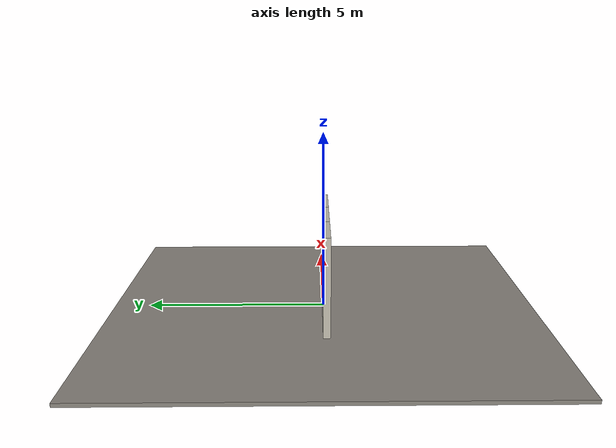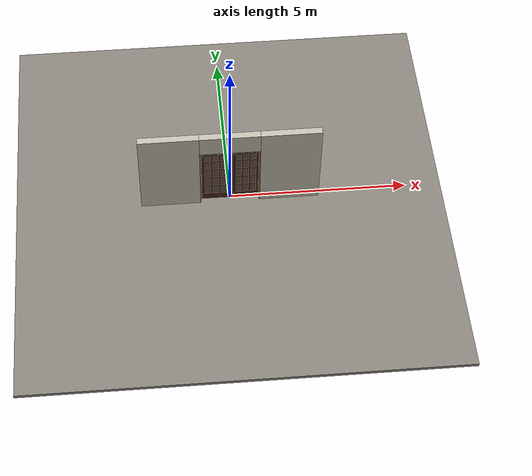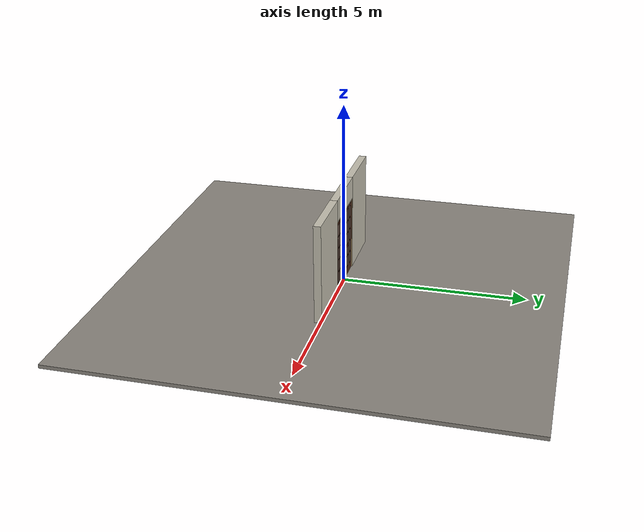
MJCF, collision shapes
<?xml version="1.0" ?>
<mujoco model="db0604_swing_double_full">
  <compiler angle="radian" meshdir="../../hardware" texturedir="../../textures" autolimits="true" inertiafromgeom="false"/>
  <option timestep="0.002" integrator="implicitfast" cone="elliptic" impratio="10" noslip_iterations="3">
    <flag multiccd="enable"/>
  </option>
  <size memory="16M"/>
  <default>
    <geom condim="4" solref="0.005 1" solimp="0.95 0.99 0.001"/>
    <joint solreflimit="0.005 1" solimplimit="0.95 0.99 0.001"/>
    <tendon solreflimit="0.005 1"/>
    <equality solref="0.002 1"/>
  </default>
  <visual>
    <headlight ambient="0.4 0.4 0.4" diffuse="0.7 0.7 0.7" specular="0.2 0.2 0.2"/>
    <quality shadowsize="4096"/>
    <map znear="0.01" zfar="60"/>
  </visual>
  <asset>
    <mesh name="hinge_e22b26c0c1" file="hinge_e22b26c0c1.obj"/>
    <mesh name="hinge_jamb_e1d088f8dc" file="hinge_jamb_e1d088f8dc.obj"/>
    <mesh name="lever_9f02b544cf" file="lever_9f02b544cf.obj"/>
    <material name="mat_floor" rgba="0.55 0.53 0.5 1" specular="0.2" shininess="0.15" reflectance="0"/>
    <material name="mat_wall" rgba="0.78 0.76 0.7 1" specular="0.2" shininess="0.1" reflectance="0"/>
    <material name="mat_leaf_a" rgba="0.291 0.147 0.087 1" specular="0.2" shininess="0.55" reflectance="0"/>
    <material name="mat_glass" rgba="0.85 0.92 0.95 0.25" specular="0.2" shininess="0.95" reflectance="0.1"/>
    <material name="mat_hinge" rgba="0.65 0.66 0.68 1" specular="0.74" shininess="0.5" reflectance="0.36"/>
    <material name="mat_op_nickel_satin" rgba="0.72 0.7 0.66 1" specular="0.8" shininess="0.65" reflectance="0.4"/>
    <material name="mat_trim" rgba="0.85 0.66 0.3 1" specular="0.8" shininess="0.75" reflectance="0.4"/>
    <material name="mat_bolt" rgba="0.85 0.66 0.3 1" specular="0.8" shininess="0.75" reflectance="0.4"/>
    <material name="mat_leaf_b" rgba="0.291 0.147 0.087 1" specular="0.2" shininess="0.55" reflectance="0"/>
    <material name="mat_frame" rgba="0.82 0.7 0.5 1" specular="0.2" shininess="0.45" reflectance="0"/>
    <material name="mat_astragal" rgba="0.8 0.81 0.83 1" specular="0.8" shininess="0.6" reflectance="0.4"/>
    <texture name="skybox" type="skybox" builtin="gradient" rgb1="0.6 0.7 0.85" rgb2="0.9 0.92 0.95" width="256" height="256"/>
  </asset>
  <worldbody>
    <light name="sun" pos="1.5 -2.5 4" dir="-0.3 0.5 -0.8" directional="true" diffuse="0.8 0.8 0.8" specular="0.3 0.3 0.3" castshadow="true"/>
    <light name="fill" pos="-1.5 2.5 3" dir="0.3 -0.5 -0.7" directional="true" diffuse="0.35 0.35 0.4" castshadow="false"/>
    <camera name="robot_view" pos="0 -2.600187 1.734312" xyaxes="1 0 0 0 0.26963 0.962964" fovy="52"/>
    <camera name="far_view" pos="0 2.484187 1.734312" xyaxes="-1 0 0 0 -0.26963 0.962964" fovy="52"/>
    <camera name="iso" pos="-1.932062 -2.193437 2.141063" xyaxes="0.741536 -0.670913 0 0.242917 0.268487 0.932151" fovy="46"/>
    <camera name="detail_handle" pos="0.0085 -0.877 1.245" xyaxes="0.97561 0.219512 0 -0.070934 0.315262 0.94635" fovy="38"/>
    <geom name="floor" type="box" size="6 6 0.05" pos="0 0 -0.05" material="mat_floor" group="0" contype="1" conaffinity="1" friction="0.8 0.005 0.0001" density="2400"/>
    <geom name="wall_left" type="box" size="0.83175 0.1 1.35" pos="-1.66825 -0.058 1.35" material="mat_wall" group="0" contype="1" conaffinity="1" friction="0.6 0.005 0.0001" density="800"/>
    <geom name="wall_right" type="box" size="0.83175 0.1 1.35" pos="1.66825 -0.058 1.35" material="mat_wall" group="0" contype="1" conaffinity="1" friction="0.6 0.005 0.0001" density="800"/>
    <geom name="wall_header" type="box" size="0.8365 0.1 0.303" pos="0 -0.058 2.397" material="mat_wall" group="0" contype="1" conaffinity="1" friction="0.6 0.005 0.0001" density="800"/>
    <geom name="hinge_0_jamb" type="mesh" mesh="hinge_jamb_e1d088f8dc" pos="-0.8145 0.029 0.259" quat="0 1 0 0" material="mat_hinge" group="1" contype="0" conaffinity="0" density="7850"/>
    <geom name="hinge_1_jamb" type="mesh" mesh="hinge_jamb_e1d088f8dc" pos="-0.8145 0.029 1.025" quat="0 1 0 0" material="mat_hinge" group="1" contype="0" conaffinity="0" density="7850"/>
    <geom name="hinge_2_jamb" type="mesh" mesh="hinge_jamb_e1d088f8dc" pos="-0.8145 0.029 1.861" quat="0 1 0 0" material="mat_hinge" group="1" contype="0" conaffinity="0" density="7850"/>
    <geom name="hinge_0_jamb_2" type="mesh" mesh="hinge_jamb_e1d088f8dc" pos="0.8145 0.029 0.259" quat="0 0 0 1" material="mat_hinge" group="1" contype="0" conaffinity="0" density="7850"/>
    <geom name="hinge_1_jamb_2" type="mesh" mesh="hinge_jamb_e1d088f8dc" pos="0.8145 0.029 1.025" quat="0 0 0 1" material="mat_hinge" group="1" contype="0" conaffinity="0" density="7850"/>
    <geom name="hinge_2_jamb_2" type="mesh" mesh="hinge_jamb_e1d088f8dc" pos="0.8145 0.029 1.861" quat="0 0 0 1" material="mat_hinge" group="1" contype="0" conaffinity="0" density="7850"/>
    <geom name="jamb_l" type="box" size="0.0095 0.1 1.0225" pos="-0.827 -0.058 1.0225" material="mat_frame" group="0" contype="1" conaffinity="1" friction="0.6 0.005 0.0001" density="300"/>
    <geom name="jamb_r" type="box" size="0.0095 0.1 1.0225" pos="0.827 -0.058 1.0225" material="mat_frame" group="0" contype="1" conaffinity="1" friction="0.6 0.005 0.0001" density="300"/>
    <geom name="jamb_head" type="box" size="0.8365 0.1 0.0095" pos="0 -0.058 2.0545" material="mat_frame" group="0" contype="1" conaffinity="1" friction="0.6 0.005 0.0001" density="300"/>
    <geom name="head_stud" type="box" size="0.8365 0.1 0.015" pos="0 -0.058 2.079" material="mat_wall" group="0" contype="1" conaffinity="1" friction="0.6 0.005 0.0001" density="500"/>
    <geom name="stop_l" type="box" size="0.015 0.006 1.0225" pos="-0.8025 -0.0285 1.0225" material="mat_frame" group="0" contype="1" conaffinity="1" friction="0.6 0.005 0.0001" density="300"/>
    <geom name="stop_r" type="box" size="0.015 0.006 1.0225" pos="0.8025 -0.0285 1.0225" material="mat_frame" group="0" contype="1" conaffinity="1" friction="0.6 0.005 0.0001" density="300"/>
    <geom name="stop_head" type="box" size="0.8175 0.006 0.015" pos="0 -0.0285 2.03" material="mat_frame" group="0" contype="1" conaffinity="1" friction="0.6 0.005 0.0001" density="300"/>
    <site name="approach_point" pos="0 -1.5 0" quat="1 0 0 0" size="0.05" rgba="0.2 0.9 0.2 0.5" group="4"/>
    <site name="goal_point" pos="0 1.5 0" quat="1 0 0 0" size="0.05" rgba="0.2 0.9 0.2 0.5" group="4"/>
    <site name="door_plane_center" pos="0 0 1.0225" quat="1 0 0 0" size="0.02" rgba="0.2 0.9 0.2 0.5" group="4"/>
    <site name="approach_point_2" pos="0 -1.5 0" quat="1 0 0 0" size="0.05" rgba="0.2 0.9 0.2 0.5" group="4"/>
    <site name="goal_point_2" pos="0 1.5 0" quat="1 0 0 0" size="0.05" rgba="0.2 0.9 0.2 0.5" group="4"/>
    <site name="door_plane_center_2" pos="0 0 1.0225" quat="1 0 0 0" size="0.02" rgba="0.2 0.9 0.2 0.5" group="4"/>
    <site name="approach_point_3" pos="0 -1.5 0" quat="1 0 0 0" size="0.05" rgba="0.2 0.9 0.2 0.5" group="4"/>
    <site name="goal_point_3" pos="0 1.5 0" quat="1 0 0 0" size="0.05" rgba="0.2 0.9 0.2 0.5" group="4"/>
    <site name="door_plane_center_3" pos="0 0 1.0225" quat="1 0 0 0" size="0.02" rgba="0.2 0.9 0.2 0.5" group="4"/>
    <body name="leaf_a" pos="-0.8175 0 0">
      <inertial pos="0.395109 0.000646 1.025926" mass="33.856412" quat="0.500787 0.498611 -0.501366 0.499231" diaginertia="1.999825027 11.745542679 13.733577145"/>
      <joint name="leaf_a_hinge" type="hinge" axis="0 0 1" pos="0.003 0.029 0" limited="true" range="0 1.919862" solreflimit="0.02 1" damping="0.210326" frictionloss="0.889302" armature="0.02"/>
      <geom name="leaf_a_slab" type="box" size="0.4065 0.022 1.016" pos="0.4095 0 1.025" material="mat_leaf_a" group="0" contype="1" conaffinity="1" friction="0.35 0.005 0.0001" density="1"/>
      <geom name="leaf_a_glass_0" type="box" size="0.0955 0.0228 0.158688" pos="0.1885 0 0.391208" material="mat_glass" group="1" contype="0" conaffinity="0" density="1"/>
      <geom name="leaf_a_glass_1" type="box" size="0.0955 0.0228 0.158688" pos="0.4095 0 0.391208" material="mat_glass" group="1" contype="0" conaffinity="0" density="1"/>
      <geom name="leaf_a_glass_2" type="box" size="0.0955 0.0228 0.158688" pos="0.6305 0 0.391208" material="mat_glass" group="1" contype="0" conaffinity="0" density="1"/>
      <geom name="leaf_a_glass_3" type="box" size="0.0955 0.0228 0.158688" pos="0.1885 0 0.738584" material="mat_glass" group="1" contype="0" conaffinity="0" density="1"/>
      <geom name="leaf_a_glass_4" type="box" size="0.0955 0.0228 0.158688" pos="0.4095 0 0.738584" material="mat_glass" group="1" contype="0" conaffinity="0" density="1"/>
      <geom name="leaf_a_glass_5" type="box" size="0.0955 0.0228 0.158688" pos="0.6305 0 0.738584" material="mat_glass" group="1" contype="0" conaffinity="0" density="1"/>
      <geom name="leaf_a_glass_6" type="box" size="0.0955 0.0228 0.158688" pos="0.1885 0 1.08596" material="mat_glass" group="1" contype="0" conaffinity="0" density="1"/>
      <geom name="leaf_a_glass_7" type="box" size="0.0955 0.0228 0.158688" pos="0.4095 0 1.08596" material="mat_glass" group="1" contype="0" conaffinity="0" density="1"/>
      <geom name="leaf_a_glass_8" type="box" size="0.0955 0.0228 0.158688" pos="0.6305 0 1.08596" material="mat_glass" group="1" contype="0" conaffinity="0" density="1"/>
      <geom name="leaf_a_glass_9" type="box" size="0.0955 0.0228 0.158688" pos="0.1885 0 1.433336" material="mat_glass" group="1" contype="0" conaffinity="0" density="1"/>
      <geom name="leaf_a_glass_10" type="box" size="0.0955 0.0228 0.158688" pos="0.4095 0 1.433336" material="mat_glass" group="1" contype="0" conaffinity="0" density="1"/>
      <geom name="leaf_a_glass_11" type="box" size="0.0955 0.0228 0.158688" pos="0.6305 0 1.433336" material="mat_glass" group="1" contype="0" conaffinity="0" density="1"/>
      <geom name="leaf_a_glass_12" type="box" size="0.0955 0.0228 0.158688" pos="0.1885 0 1.780712" material="mat_glass" group="1" contype="0" conaffinity="0" density="1"/>
      <geom name="leaf_a_glass_13" type="box" size="0.0955 0.0228 0.158688" pos="0.4095 0 1.780712" material="mat_glass" group="1" contype="0" conaffinity="0" density="1"/>
      <geom name="leaf_a_glass_14" type="box" size="0.0955 0.0228 0.158688" pos="0.6305 0 1.780712" material="mat_glass" group="1" contype="0" conaffinity="0" density="1"/>
      <geom name="hinge_0" type="mesh" mesh="hinge_e22b26c0c1" pos="0.003 0.029 0.259" quat="0 1 0 0" material="mat_hinge" group="1" contype="0" conaffinity="0" density="7850"/>
      <geom name="hinge_1" type="mesh" mesh="hinge_e22b26c0c1" pos="0.003 0.029 1.025" quat="0 1 0 0" material="mat_hinge" group="1" contype="0" conaffinity="0" density="7850"/>
      <geom name="hinge_2" type="mesh" mesh="hinge_e22b26c0c1" pos="0.003 0.029 1.861" quat="0 1 0 0" material="mat_hinge" group="1" contype="0" conaffinity="0" density="7850"/>
      <geom name="leaf_a_latch_bolt_faceplate" type="box" size="0.0006 0.01235 0.0267" pos="0.8154 0 0.965" material="mat_bolt" group="1" contype="0" conaffinity="0" density="8500"/>
      <site name="leaf_a_edge_mid" pos="0.816 0 1.016" quat="1 0 0 0" size="0.02" rgba="0.2 0.9 0.2 0.5" group="4"/>
      <body name="leaf_a_handle" pos="0.746 0 0.965">
        <inertial pos="-0.028544 0 0" mass="0.978187" quat="0 0.707107 0.707107 0" diaginertia="0.001772047 0.003604455 0.005198299"/>
        <joint name="leaf_a_handle_hinge" type="hinge" axis="0 -1 0" limited="true" range="0 0.96" damping="0.245624" frictionloss="0.048" stiffness="1.2" springref="-0.458333" armature="0.01"/>
        <geom name="leaf_a_handle_spindle" type="cylinder" size="0.006 0.03" pos="0 0 0" quat="0.707107 -0.707107 0 0" material="mat_op_nickel_satin" group="1" contype="0" conaffinity="0" density="7850"/>
        <geom name="leaf_a_handle_lever_n" type="mesh" mesh="lever_9f02b544cf" pos="0 -0.022 0" quat="0.707107 0.707107 0 0" material="mat_op_nickel_satin" group="1" contype="0" conaffinity="0" density="3000"/>
        <geom name="leaf_a_handle_lever_col_n" type="capsule" size="0.0095 0.053" pos="-0.0625 -0.077 0" quat="0.707107 0 -0.707107 0" material="mat_op_nickel_satin" group="3" contype="1" conaffinity="1" rgba="0.8 0.3 0.3 0.25" friction="0.7 0.01 0.0001" density="3000"/>
        <geom name="leaf_a_handle_hub_col_n" type="cylinder" size="0.012 0.022" pos="0 -0.052 0" quat="0.707107 -0.707107 0 0" material="mat_op_nickel_satin" group="3" contype="1" conaffinity="1" rgba="0.8 0.3 0.3 0.25" friction="0.6 0.005 0.0001" density="3000"/>
        <geom name="leaf_a_handle_lever_p" type="mesh" mesh="lever_9f02b544cf" pos="0 0.022 0" quat="-0.707107 0.707107 0 0" material="mat_op_nickel_satin" group="1" contype="0" conaffinity="0" density="3000"/>
        <geom name="leaf_a_handle_lever_col_p" type="capsule" size="0.0095 0.053" pos="-0.0625 0.077 0" quat="0.707107 0 -0.707107 0" material="mat_op_nickel_satin" group="3" contype="1" conaffinity="1" rgba="0.8 0.3 0.3 0.25" friction="0.7 0.01 0.0001" density="3000"/>
        <geom name="leaf_a_handle_hub_col_p" type="cylinder" size="0.012 0.022" pos="0 0.052 0" quat="0.707107 -0.707107 0 0" material="mat_op_nickel_satin" group="3" contype="1" conaffinity="1" rgba="0.8 0.3 0.3 0.25" friction="0.6 0.005 0.0001" density="3000"/>
        <site name="leaf_a_handle_grip_n" pos="-0.1 -0.077 0" quat="1 0 0 0" size="0.012" rgba="0.2 0.9 0.2 0.5" group="4"/>
        <site name="leaf_a_handle_grip_p" pos="-0.1 0.077 0" quat="1 0 0 0" size="0.012" rgba="0.2 0.9 0.2 0.5" group="4"/>
      </body>
      <body name="leaf_a_latch_bolt" pos="0.816 0 0.965">
        <inertial pos="-0.00865 0 0" mass="0.041419" quat="0.92388 -0.382683 0 0" diaginertia="0.000000798 0.000005598 0.000005598"/>
        <joint name="leaf_a_latch_bolt_slide" type="slide" axis="-1 0 0" limited="true" range="0 0.0127" damping="2" frictionloss="0.3" stiffness="300" springref="-0.008333" armature="0.1"/>
        <geom name="leaf_a_latch_bolt_capsule" type="capsule" size="0.00635 0.015" pos="-0.00865 0 0" quat="0.707107 0 0.707107 0" material="mat_bolt" group="0" contype="1" conaffinity="1" friction="0.2 0.005 0.0001" density="8500"/>
      </body>
    </body>
    <body name="leaf_b" pos="0.8175 0 0">
      <inertial pos="-0.432548 -0.003845 1.024495" mass="32.965187" quat="0.493668 0.507729 -0.49211 0.506292" diaginertia="2.279731132 11.367524692 13.633055625"/>
      <joint name="leaf_b_hinge" type="hinge" axis="0 0 -1" pos="-0.003 0.029 0" limited="true" range="0 0.001" solreflimit="0.02 1" damping="0.210326" frictionloss="0.889302" armature="0.02"/>
      <geom name="leaf_b_edge_965_wall_n" type="box" size="0.03 0.007075 0.0167" pos="-0.786 -0.014925 0.965" material="mat_leaf_b" group="0" contype="1" conaffinity="1" friction="0.6 0.005 0.0001" density="1"/>
      <geom name="leaf_b_edge_965_wall_p" type="box" size="0.03 0.008 0.0167" pos="-0.786 0.01585 0.965" material="mat_leaf_b" group="0" contype="1" conaffinity="1" friction="0.6 0.005 0.0001" density="1"/>
      <geom name="leaf_b_edge_965_ramp" type="box" size="0.03 0.01649 0.0167" pos="-0.781861 0.026388 0.965" quat="0.977148 0 0 -0.212558" material="mat_leaf_b" group="0" contype="1" conaffinity="1" friction="0.12 0.005 0.0001" density="1"/>
      <geom name="leaf_b_edge_965_back" type="box" size="0.02165 0.00785 0.0167" pos="-0.77765 0 0.965" material="mat_leaf_b" group="0" contype="1" conaffinity="1" friction="0.6 0.005 0.0001" density="1"/>
      <geom name="leaf_b_edge_seg_0" type="box" size="0.03 0.022 0.46965" pos="-0.786 0 0.47865" material="mat_leaf_b" group="0" contype="1" conaffinity="1" friction="0.6 0.005 0.0001" density="1"/>
      <geom name="leaf_b_edge_seg_1" type="box" size="0.03 0.022 0.52965" pos="-0.786 0 1.51135" material="mat_leaf_b" group="0" contype="1" conaffinity="1" friction="0.6 0.005 0.0001" density="1"/>
      <geom name="leaf_b_slab" type="box" size="0.3765 0.022 1.016" pos="-0.3795 0 1.025" material="mat_leaf_b" group="0" contype="1" conaffinity="1" friction="0.35 0.005 0.0001" density="1"/>
      <geom name="leaf_b_glass_0" type="box" size="0.0855 0.0228 0.158688" pos="-0.1785 0 0.391208" material="mat_glass" group="1" contype="0" conaffinity="0" density="1"/>
      <geom name="leaf_b_glass_1" type="box" size="0.0855 0.0228 0.158688" pos="-0.3795 0 0.391208" material="mat_glass" group="1" contype="0" conaffinity="0" density="1"/>
      <geom name="leaf_b_glass_2" type="box" size="0.0855 0.0228 0.158688" pos="-0.5805 0 0.391208" material="mat_glass" group="1" contype="0" conaffinity="0" density="1"/>
      <geom name="leaf_b_glass_3" type="box" size="0.0855 0.0228 0.158688" pos="-0.1785 0 0.738584" material="mat_glass" group="1" contype="0" conaffinity="0" density="1"/>
      <geom name="leaf_b_glass_4" type="box" size="0.0855 0.0228 0.158688" pos="-0.3795 0 0.738584" material="mat_glass" group="1" contype="0" conaffinity="0" density="1"/>
      <geom name="leaf_b_glass_5" type="box" size="0.0855 0.0228 0.158688" pos="-0.5805 0 0.738584" material="mat_glass" group="1" contype="0" conaffinity="0" density="1"/>
      <geom name="leaf_b_glass_6" type="box" size="0.0855 0.0228 0.158688" pos="-0.1785 0 1.08596" material="mat_glass" group="1" contype="0" conaffinity="0" density="1"/>
      <geom name="leaf_b_glass_7" type="box" size="0.0855 0.0228 0.158688" pos="-0.3795 0 1.08596" material="mat_glass" group="1" contype="0" conaffinity="0" density="1"/>
      <geom name="leaf_b_glass_8" type="box" size="0.0855 0.0228 0.158688" pos="-0.5805 0 1.08596" material="mat_glass" group="1" contype="0" conaffinity="0" density="1"/>
      <geom name="leaf_b_glass_9" type="box" size="0.0855 0.0228 0.158688" pos="-0.1785 0 1.433336" material="mat_glass" group="1" contype="0" conaffinity="0" density="1"/>
      <geom name="leaf_b_glass_10" type="box" size="0.0855 0.0228 0.158688" pos="-0.3795 0 1.433336" material="mat_glass" group="1" contype="0" conaffinity="0" density="1"/>
      <geom name="leaf_b_glass_11" type="box" size="0.0855 0.0228 0.158688" pos="-0.5805 0 1.433336" material="mat_glass" group="1" contype="0" conaffinity="0" density="1"/>
      <geom name="leaf_b_glass_12" type="box" size="0.0855 0.0228 0.158688" pos="-0.1785 0 1.780712" material="mat_glass" group="1" contype="0" conaffinity="0" density="1"/>
      <geom name="leaf_b_glass_13" type="box" size="0.0855 0.0228 0.158688" pos="-0.3795 0 1.780712" material="mat_glass" group="1" contype="0" conaffinity="0" density="1"/>
      <geom name="leaf_b_glass_14" type="box" size="0.0855 0.0228 0.158688" pos="-0.5805 0 1.780712" material="mat_glass" group="1" contype="0" conaffinity="0" density="1"/>
      <geom name="hinge_0_2" type="mesh" mesh="hinge_e22b26c0c1" pos="-0.003 0.029 0.259" quat="0 0 0 1" material="mat_hinge" group="1" contype="0" conaffinity="0" density="7850"/>
      <geom name="hinge_1_2" type="mesh" mesh="hinge_e22b26c0c1" pos="-0.003 0.029 1.025" quat="0 0 0 1" material="mat_hinge" group="1" contype="0" conaffinity="0" density="7850"/>
      <geom name="hinge_2_2" type="mesh" mesh="hinge_e22b26c0c1" pos="-0.003 0.029 1.861" quat="0 0 0 1" material="mat_hinge" group="1" contype="0" conaffinity="0" density="7850"/>
      <geom name="astragal" type="box" size="0.02 0.008 0.996" pos="-0.82 -0.03 1.016" material="mat_astragal" group="0" contype="1" conaffinity="1" friction="0.6 0.005 0.0001" density="2700"/>
      <site name="leaf_b_edge_mid" pos="-0.816 0 1.016" quat="1 0 0 0" size="0.02" rgba="0.2 0.9 0.2 0.5" group="4"/>
    </body>
  </worldbody>
  <tendon>
    <fixed name="leaf_a_latch_bolt_coupling" limited="true" range="0 10">
      <joint joint="leaf_a_latch_bolt_slide" coef="1"/>
      <joint joint="leaf_a_handle_hinge" coef="-0.013956"/>
    </fixed>
  </tendon>
  <sensor>
    <jointpos name="leaf_a_hinge_pos" joint="leaf_a_hinge"/>
    <jointvel name="leaf_a_hinge_vel" joint="leaf_a_hinge"/>
    <jointpos name="leaf_a_handle_hinge_pos" joint="leaf_a_handle_hinge"/>
    <jointvel name="leaf_a_handle_hinge_vel" joint="leaf_a_handle_hinge"/>
    <jointpos name="leaf_a_latch_bolt_slide_pos" joint="leaf_a_latch_bolt_slide"/>
    <jointvel name="leaf_a_latch_bolt_slide_vel" joint="leaf_a_latch_bolt_slide"/>
    <jointpos name="leaf_b_hinge_pos" joint="leaf_b_hinge"/>
    <jointvel name="leaf_b_hinge_vel" joint="leaf_b_hinge"/>
  </sensor>
</mujoco>
